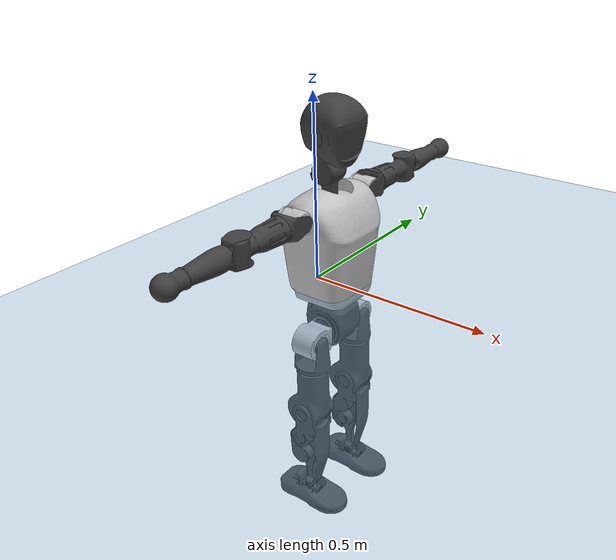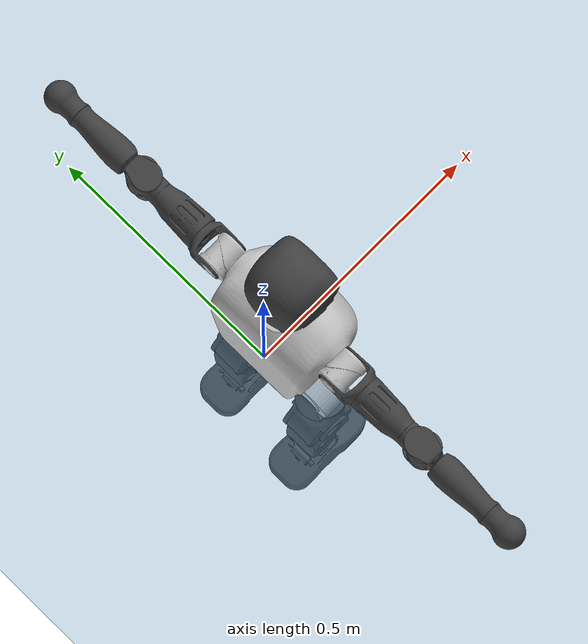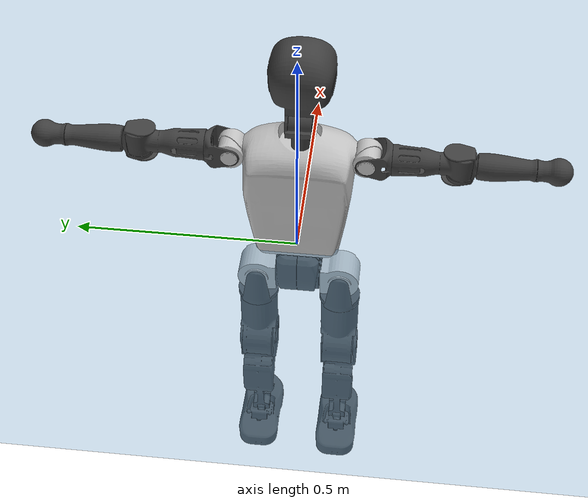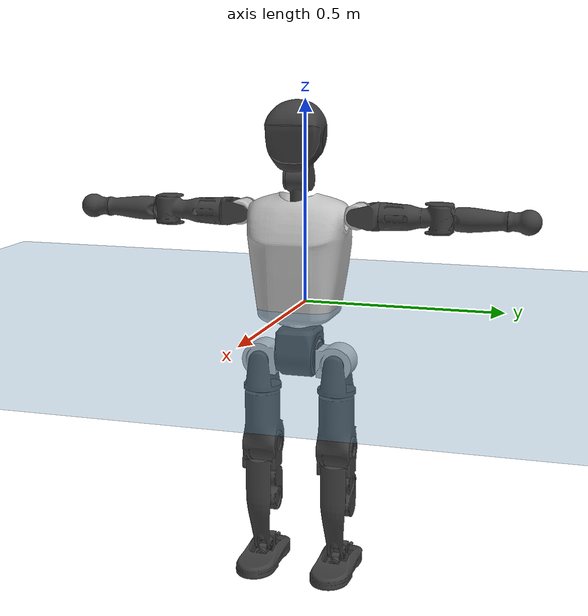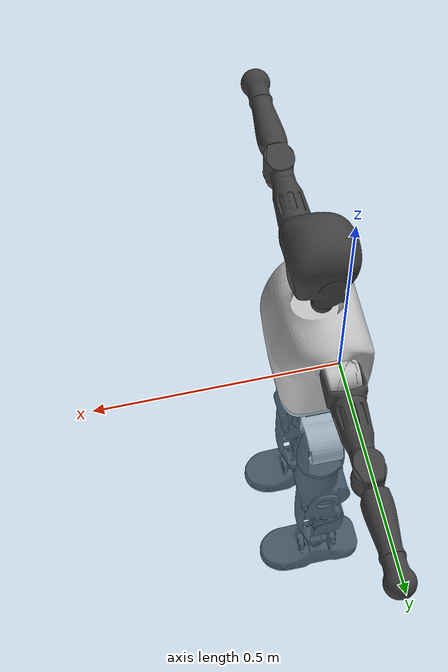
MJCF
<mujoco model="T1">
  <compiler angle="radian" assetdir="assets" balanceinertia="true" inertiafromgeom="false"/>

  <option timestep="0.005" density="1.2" viscosity="2e-05"/>

  <size nkey="1"/>

  <visual>
    <quality shadowsize="8192"/>
    <map shadowclip="0.5"/>
  </visual>

  <default>
    <default class="/">
      <joint armature="0.01" damping="0.01" frictionloss="0.1"/>
      <geom contype="0" conaffinity="0" group="1" solref="-1000 -80"/>
      <site size="0.01 0.005 0.005" group="5"/>
      <general forcelimited="true" biastype="affine" gainprm="25" biasprm="0 -25 -0.6"/>
      <default class="t1">
        <geom rgba="0.25 0.25 0.25 1"/>
        <default class="visual">
          <geom type="mesh" group="2"/>
        </default>
        <default class="collision">
          <geom group="3"/>
        </default>
        <default class="foot">
          <geom size="0.1115 0.05 0.015" type="box" condim="6" group="4" priority="1" solimp="0.015 1 0.015"/>
        </default>
        <default class="reward_collision_sphere">
          <geom group="5" rgba="1 0 0 1"/>
        </default>
      </default>
    </default>
  </default>

  <asset>
    <texture type="skybox" colorspace="auto" name="//unnamed_texture_0" builtin="gradient" rgb1="0.95 0.95 0.95" rgb2="0.95 0.95 0.95" width="100" height="600"/>
    <texture type="2d" colorspace="auto" name="texplane" builtin="checker" rgb1="0.345 0.575 0.748" rgb2="0.345 0.575 0.748" markrgb="1 1 1" width="512" height="512"/>
    <material name="MatPlane" class="/" texture="texplane" texuniform="true" texrepeat="2 2" specular="0.9"/>
    <mesh name="Trunk" class="/" file="Trunk.stl"/>
    <mesh name="H1" class="/" file="H1.stl"/>
    <mesh name="H2" class="/" file="H2.stl"/>
    <mesh name="AL1" class="/" file="AL1.stl"/>
    <mesh name="AL2" class="/" file="AL2.stl"/>
    <mesh name="AL3" class="/" file="AL3.stl"/>
    <mesh name="left_hand_link" class="/" file="left_hand_link.stl"/>
    <mesh name="AR1" class="/" file="AR1.stl"/>
    <mesh name="AR2" class="/" file="AR2.stl"/>
    <mesh name="AR3" class="/" file="AR3.stl"/>
    <mesh name="right_hand_link" class="/" file="right_hand_link.stl"/>
    <mesh name="Waist" class="/" file="Waist.stl"/>
    <mesh name="Hip_Pitch_Left" class="/" file="Hip_Pitch_Left.stl"/>
    <mesh name="Hip_Roll_Left" class="/" file="Hip_Roll_Left.stl"/>
    <mesh name="Hip_Yaw_Left" class="/" file="Hip_Yaw_Left.stl"/>
    <mesh name="Shank_Left" class="/" file="Shank_Left.stl"/>
    <mesh name="Ankle_Cross_Left" class="/" file="Ankle_Cross_Left.stl"/>
    <mesh name="left_foot_link" class="/" file="left_foot_link.stl"/>
    <mesh name="Hip_Pitch_Right" class="/" file="Hip_Pitch_Right.stl"/>
    <mesh name="Hip_Roll_Right" class="/" file="Hip_Roll_Right.stl"/>
    <mesh name="Hip_Yaw_Right" class="/" file="Hip_Yaw_Right.stl"/>
    <mesh name="Shank_Right" class="/" file="Shank_Right.stl"/>
    <mesh name="Ankle_Cross_Right" class="/" file="Ankle_Cross_Right.stl"/>
    <mesh name="right_foot_link" class="/" file="right_foot_link.stl"/>
  </asset>

  <worldbody>
    <geom name="floor" class="/" size="100 100 0.125" type="plane" group="0" material="MatPlane"/>
    <light name="toplight_shadow" class="/" pos="0 0 5" dir="0.0990148 0.0990148 -0.990148" type="directional" ambient="0.04 0.04 0.04" diffuse="0.55 0.55 0.55" specular="0.12 0.12 0.12"/>
    <light name="toplight_fill" class="/" pos="0 0 5" dir="0.0990148 0.0990148 -0.990148" type="directional" castshadow="false" ambient="0.04 0.04 0.04" diffuse="0.3 0.3 0.3" specular="0.08 0.08 0.08"/>
    <body name="trunk" childclass="t1" pos="0.000328889 5.28354e-05 0.000202899" quat="1 4.55865e-05 -0.00012688 -7.33095e-05">
      <inertial pos="0.0442597 -0.000458384 0.109365" quat="0.999966 -0.00311444 -0.00676592 -0.00341698" mass="9.3678" diaginertia="0.0321071 0.0507709 0.06731"/>
      <joint name="//unnamed_joint_0" type="free" armature="0" damping="0" frictionloss="0"/>
      <geom name="//unnamed_geom_1" class="visual" rgba="0.76 0.76 0.76 1" mesh="Trunk"/>
      <geom name="//unnamed_geom_2" class="collision" size="0.0690945 0.092126 0.138189" pos="0.0484916 0 0.124244" type="box"/>
      <geom name="//unnamed_geom_3" class="reward_collision_sphere" size="0.105945" pos="0.0484916 0 0.103537"/>
      <geom name="//unnamed_geom_4" class="reward_collision_sphere" size="0.0138189" pos="0.0484916 0.0782188 0"/>
      <geom name="//unnamed_geom_5" class="reward_collision_sphere" size="0.0138189" pos="0.0484916 -0.0782188 0"/>
      <geom name="//unnamed_geom_6" class="reward_collision_sphere" size="0.0138189" pos="0.0484916 0.0984637 0.186366"/>
      <geom name="//unnamed_geom_7" class="reward_collision_sphere" size="0.0138189" pos="0.0484916 -0.0984637 0.186366"/>
      <site name="imu" pos="-0.0104893 0.00431454 0.003921" size="0.0092126"/>
      <camera name="track" pos="0 -1.84044 0" quat="0.707107 0.707107 0 0" mode="trackcom"/>
      <camera name="ego_camera" pos="0.0985996 0 0.434853" quat="-0.5 -0.5 0.5 0.5"/>
      <body name="H1" pos="0.0475994 -0.00249081 0.248953" quat="1 0.000229665 0.000397789 0.000263055">
        <inertial pos="-0.00143068 -0.0012933 0.0601224" quat="0.757794 -0.00888206 0.00447619 0.652418" mass="0.35306" diaginertia="8.36903e-05 0.000143535 0.000179388"/>
        <joint name="AAHead_yaw" pos="0 0 0" axis="-0.00103124 0.0101207 0.999948" range="-1.57776 1.55146" armature="0.00993705" damping="0.00965154" frictionloss="0.0906182"/>
        <geom name="//unnamed_geom_8" class="visual" mesh="H1"/>
        <body name="H2" pos="-0.00118747 -6.2402e-05 0.0642415" quat="1 -0.000402048 0.000412897 8.43557e-05">
          <inertial pos="0.00609931 -0.00151022 0.102295" quat="0.988517 0.104738 -0.0766385 -0.0773966" mass="0.507227" diaginertia="0.0007187 0.0012805 0.00206286"/>
          <joint name="Head_pitch" pos="0 0 0" axis="-0.00045335 -1 -0.000582369" range="-1.23962 0.352088" armature="0.00939051" damping="0.00989441" frictionloss="0.0927337"/>
          <geom name="//unnamed_geom_9" class="visual" mesh="H2"/>
          <geom name="//unnamed_geom_10" class="collision" size="0.0737008" pos="0.00808194 0 0.11389"/>
          <geom name="//unnamed_geom_11" class="reward_collision_sphere" size="0.0829134" pos="0.0161639 0 0.103537"/>
        </body>
      </body>
      <body name="AL1" pos="0.0468032 0.100737 0.226743" quat="1 -4.0373e-05 0.000581928 2.13608e-05">
        <inertial pos="-0.00283012 0.0432829 -0.00112945" quat="0.503402 0.4944 -0.50288 0.499266" mass="0.409726" diaginertia="0.000469191 0.000847572 0.000347035"/>
        <joint name="Left_Shoulder_Pitch" pos="0 0 0" axis="-0.000168836 1 -0.000139393" stiffness="0.00569006" range="-3.32277 1.2255" armature="0.00934226" damping="0.00539135" frictionloss="0.0897227"/>
        <geom name="//unnamed_geom_12" class="visual" rgba="0.76 0.76 0.76 1" mesh="AL1"/>
        <body name="AL2" pos="-0.000214745 0.0458716 0.000316071" quat="1 0.000282775 0.000220437 -0.000310347">
          <inertial pos="0.00271306 0.0357417 -0.000717221" quat="0.487853 0.51178 -0.488083 0.511718" mass="0.12652" diaginertia="0.00014374 0.000240438 0.00021525"/>
          <joint name="Left_Shoulder_Roll" pos="0 0 0" axis="-0.999998 -0.00172964 -0.000215687" range="-1.56543 1.70575" armature="0.00919246" damping="0.0180259" frictionloss="0.0903687"/>
          <geom name="//unnamed_geom_13" class="visual" mesh="AL2"/>
          <body name="AL3" pos="0.00287381 0.0559521 0.00107575" quat="1 -0.000133728 -1.23458e-05 -1.82406e-05">
            <inertial pos="-0.000413214 0.0778132 0.000965097" quat="0.705071 0.709113 0.00541299 0.00187692" mass="0.789318" diaginertia="0.00446119 0.00835478 0.000729851"/>
            <joint name="Left_Elbow_Pitch" pos="0 0 0" axis="-0.00108584 -0.999999 -0.000181909" range="-2.28398 2.29656" armature="0.00849219" damping="0.00843791" frictionloss="0.0924869"/>
            <geom name="//unnamed_geom_14" class="visual" mesh="AL3"/>
            <geom name="//unnamed_geom_15" class="collision" size="0.0276378 0.0690945" pos="0 0.0460111 0" quat="0.707105 0.707108 0 0" type="cylinder"/>
            <geom name="//unnamed_geom_16" class="reward_collision_sphere" size="0.0331654"/>
            <body name="left_hand_link" pos="-0.000626692 0.135642 0.000326747" quat="1 -2.30712e-05 0.000521176 2.34002e-06">
              <inertial pos="0.0022572 0.0994756 0.000414315" quat="0.705945 0.708255 0.00120949 0.00385003" mass="0.25342" diaginertia="0.00278748 0.00533498 0.000248465"/>
              <joint name="Left_Elbow_Yaw" pos="0 0 0" axis="0.0017445 0.00127433 0.999998" range="-2.45385 0.00185736" armature="0.00968771" damping="0.0151277" frictionloss="0.097366"/>
              <geom name="//unnamed_geom_17" class="visual" mesh="left_hand_link"/>
              <geom name="//unnamed_geom_18" class="collision" size="0.0276378 0.0806103" pos="0 0.119629 0" quat="0.707105 0.707108 0 0" type="cylinder"/>
              <geom name="//unnamed_geom_19" class="reward_collision_sphere" size="0.046063"/>
              <geom name="//unnamed_geom_20" class="reward_collision_sphere" size="0.0322441" pos="0 0.101224 0"/>
              <geom name="//unnamed_geom_21" class="reward_collision_sphere" size="0.0322441" pos="0 0.197848 0"/>
            </body>
          </body>
        </body>
      </body>
      <body name="AR1" pos="0.0475251 -0.0986777 0.227098" quat="1 1.72692e-05 0.000422397 -2.60751e-05">
        <inertial pos="-0.00161958 -0.0424766 -0.000255982" quat="0.504069 0.495648 -0.504587 0.49562" mass="0.410698" diaginertia="0.000476276 0.000853148 0.000346169"/>
        <joint name="Right_Shoulder_Pitch" pos="0 0 0" axis="0.000175818 -1 0.0001734" stiffness="0.00716828" range="-1.2158 3.28903" armature="0.00940393" damping="0" frictionloss="0.0928223"/>
        <geom name="//unnamed_geom_22" class="visual" rgba="0.76 0.76 0.76 1" mesh="AR1"/>
        <body name="AR2" pos="0.000772298 -0.0433868 -0.0018302" quat="1 5.30378e-07 5.8929e-07 4.28961e-07">
          <inertial pos="0.00318201 -0.0338997 -0.00182532" quat="0.512549 0.489656 -0.510042 0.487224" mass="0.125294" diaginertia="0.000138878 0.000222716 0.000208832"/>
          <joint name="Right_Shoulder_Roll" pos="0 0 0" axis="-0.999959 -0.00899897 -0.000580776" range="-1.69397 1.56907" armature="0.00889706" damping="0.018934" frictionloss="0.0906059"/>
          <geom name="//unnamed_geom_23" class="visual" mesh="AR2"/>
          <body name="AR3" pos="0.000368571 -0.0557128 -0.000874859" quat="1 -0.000246717 -4.18411e-05 -2.80088e-05">
            <inertial pos="-0.00242816 -0.0795538 5.84888e-05" quat="0.708695 0.705513 0.000484404 0.00134" mass="0.797216" diaginertia="0.00445683 0.00842778 0.00075905"/>
            <joint name="Right_Elbow_Pitch" pos="0 0 0" axis="0.00258532 0.999996 -0.00113742" range="-2.27422 2.26255" armature="0.00924329" damping="0.0137682" frictionloss="0.0826822"/>
            <geom name="//unnamed_geom_24" class="visual" mesh="AR3"/>
            <geom name="//unnamed_geom_25" class="collision" size="0.0276378 0.0690945" pos="0 -0.0460111 0" quat="0.707105 0.707108 0 0" type="cylinder"/>
            <geom name="//unnamed_geom_26" class="reward_collision_sphere" size="0.0331654"/>
            <body name="right_hand_link" pos="-0.00069946 -0.135308 -0.000357137" quat="1 0.000199745 9.51606e-05 0.000141295">
              <inertial pos="0.000358485 -0.100461 0.00256179" quat="0.706119 0.708093 0.000204476 7.94186e-05" mass="0.256293" diaginertia="0.00278668 0.00523669 0.000257753"/>
              <joint name="Right_Elbow_Yaw" pos="0 0 0" axis="-0.000880013 0.00219301 0.999997" range="-0.00373489 2.45929" armature="0.00926642" damping="0.0105436" frictionloss="0.0835243"/>
              <geom name="//unnamed_geom_27" class="visual" mesh="right_hand_link"/>
              <geom name="//unnamed_geom_28" class="collision" size="0.0276378 0.0806103" pos="0 -0.119629 0" quat="0.707105 0.707108 0 0" type="cylinder"/>
              <geom name="//unnamed_geom_29" class="reward_collision_sphere" size="0.046063"/>
              <geom name="//unnamed_geom_30" class="reward_collision_sphere" size="0.0322441" pos="0 -0.101224 0"/>
              <geom name="//unnamed_geom_31" class="reward_collision_sphere" size="0.0322441" pos="0 -0.197848 0"/>
            </body>
          </body>
        </body>
      </body>
      <body name="Waist" pos="0.0513272 9.91256e-05 -0.120404" quat="1 0.000173892 0.000201038 0.000236297">
        <inertial pos="0.00105136 -0.000521557 0.0073681" quat="0.983522 0.000975867 -0.180755 0.00330009" mass="1.99572" diaginertia="0.00189974 0.00345933 0.00579325"/>
        <joint name="Waist" pos="0 0 0" axis="0.00241418 0.00540907 0.999982" range="-1.57094 1.5729" armature="0.0090909" damping="0.00940874" frictionloss="0.0836701"/>
        <geom name="//unnamed_geom_32" class="visual" mesh="Waist"/>
        <body name="Hip_Pitch_Left" pos="0.00119412 0.0968347 0.000851592" quat="1 -0.000735052 0.000220935 -0.000267697">
          <inertial pos="0.000269389 -0.00828991 -0.0198022" quat="0.974621 0.22337 0.0144687 0.00328896" mass="0.794859" diaginertia="0.00061878 0.00097054 0.00151788"/>
          <joint name="Left_Hip_Pitch" pos="0 0 0" axis="0.00241663 0.999997 2.19315e-05" range="-1.78065 1.56884" armature="0.00942543" damping="0.0174663" frictionloss="0.0921561"/>
          <geom name="//unnamed_geom_33" class="visual" rgba="0.76 0.76 0.76 1" mesh="Hip_Pitch_Left"/>
          <body name="Hip_Roll_Left" pos="0.00218713 0.000616099 -0.0207709" quat="0.999999 -0.00112402 0.000341054 0.000110108">
            <inertial pos="0.00146067 0.000742553 -0.0558338" quat="0.707022 -0.00710336 -0.00642197 0.707126" mass="0.28816" diaginertia="0.000567089 0.00097558 0.000594251"/>
            <joint name="Left_Hip_Roll" pos="0 0 0" axis="-0.99995 -0.00168534 -0.00990042" range="-1.52566 0.193906" armature="0.00928303" damping="0.00668431" frictionloss="0.0963726"/>
            <geom name="//unnamed_geom_34" class="visual" mesh="Hip_Roll_Left"/>
            <geom name="//unnamed_geom_35" class="reward_collision_sphere" size="0.0506693"/>
            <body name="Hip_Yaw_Left" pos="0.000729094 0.000170134 -0.0858161" quat="1 -0.00075994 -0.000582967 7.66213e-05">
              <inertial pos="-0.00750418 0.000873539 -0.0915112" quat="0.694645 -0.0347493 -0.0289352 0.71793" mass="1.69303" diaginertia="0.00912333 0.0167587 0.00311157"/>
              <joint name="Left_Hip_Yaw" pos="0 0 0" axis="0.00128234 -0.00133538 -0.999998" range="-0.960376 1.0409" armature="0.00911162" damping="0.00870051" frictionloss="0.0982099"/>
              <geom name="//unnamed_geom_36" class="visual" mesh="Hip_Yaw_Left"/>
              <geom name="//unnamed_geom_37" class="collision" size="0.046063 0.0737008" type="cylinder"/>
              <body name="Shank_Left" pos="-0.0109907 0.00136945 -0.138293" quat="1 -1.2503e-05 -3.73811e-06 -1.37963e-06">
                <inertial pos="-0.00706495 -0.000213767 -0.129799" quat="0.997465 0.00898582 -0.0321262 0.0628518" mass="1.35392" diaginertia="0.011981 0.0234953 0.0022252"/>
                <joint name="Left_Knee_Pitch" pos="0 0 0" axis="-0.000885404 0.999992 -0.00399768" stiffness="4.37038e-05" range="-0.00763703 2.35863" armature="0.00891791" damping="0.00833447" frictionloss="0.102"/>
                <geom name="//unnamed_geom_38" class="visual" mesh="Shank_Left"/>
                <geom name="//unnamed_geom_39" class="collision" size="0.046063 0.0690945" pos="0 0 -0.124244" type="cylinder"/>
                <geom name="//unnamed_geom_40" class="reward_collision_sphere" size="0.0598819"/>
                <body name="Ankle_Cross_Left" pos="0.00231627 0.000567924 -0.291124" quat="1 1.59924e-05 -6.37755e-06 0.00010719">
                  <inertial pos="-0.00299562 -0.000360046 -0.00871942" quat="0.443381 0.549326 0.552032 0.443751" mass="0.0568286" diaginertia="9.87238e-06 1.69089e-05 1.33555e-05"/>
                  <joint name="Left_Ankle_Pitch" pos="0 0 0" axis="0.001819 0.999995 0.00250739" range="-0.872309 0.339707" armature="0.0102356" damping="0.0151765" frictionloss="0.0955664"/>
                  <geom name="//unnamed_geom_41" class="visual" mesh="Ankle_Cross_Left"/>
                  <body name="left_foot_link" pos="0.00161264 0.000809599 -0.0119109" quat="1 4.54048e-05 3.82807e-05 -4.23223e-05">
                    <inertial pos="-0.0021997 0.000621129 -0.00932628" quat="0.000250201 0.62099 -0.000300236 0.783819" mass="0.541049" diaginertia="0.00093286 0.00156654 0.00256658"/>
                    <joint name="Left_Ankle_Roll" pos="0 0 0" axis="-0.999998 -0.0020161 -0.000140706" range="-0.446603 0.452285" armature="0.0091331" damping="0.000123207" frictionloss="0.0919711"/>
                    <geom name="//unnamed_geom_42" class="visual" mesh="left_foot_link"/>
                    <geom name="left_foot" class="foot" size="0.101219 0.0445148 0.0144469" pos="0.00808194 0 -0.0155305"/>
                    <geom name="//unnamed_geom_44" class="reward_collision_sphere" size="0.0479055" pos="0.00808194 0 -0.0155305"/>
                    <geom name="//unnamed_geom_45" class="reward_collision_sphere" size="0.0276378" pos="0.0767784 -0.0211651 -0.0155305"/>
                    <geom name="//unnamed_geom_46" class="reward_collision_sphere" size="0.0276378" pos="-0.0565736 -0.0211651 -0.0155305"/>
                    <site name="left_foot" class="foot" pos="0.00808194 0 -0.0155305" size="0.0092126"/>
                  </body>
                </body>
              </body>
            </body>
          </body>
        </body>
        <body name="Hip_Pitch_Right" pos="3.30215e-05 -0.0972604 3.66751e-05" quat="1 -7.11997e-05 0.000153734 0.000100953">
          <inertial pos="0.000301931 0.00699855 -0.0200574" quat="0.974291 -0.224796 0.0131854 -0.00704031" mass="0.801996" diaginertia="0.000605961 0.000989803 0.0014747"/>
          <joint name="Right_Hip_Pitch" pos="0 0 0" axis="0.00456438 -0.999986 0.00283988" range="-1.61981 1.84371" armature="0.00936796" damping="0.0150691" frictionloss="0.0827868"/>
          <geom name="//unnamed_geom_47" class="visual" rgba="0.76 0.76 0.76 1" mesh="Hip_Pitch_Right"/>
          <body name="Hip_Roll_Right" pos="0.00232107 0.000334667 -0.0214836" quat="1 -0.000342786 0.000153895 -4.56273e-05">
            <inertial pos="0.00198774 -0.00135297 -0.0543893" quat="0.703696 -0.00535063 -0.00486125 0.710465" mass="0.29678" diaginertia="0.000590757 0.000997533 0.000617519"/>
            <joint name="Right_Hip_Roll" pos="0 0 0" axis="-0.999908 0.0128706 -0.00424553" stiffness="0.00351824" range="-0.202006 1.58812" armature="0.00912116" damping="0.00875906" frictionloss="0.090002"/>
            <geom name="//unnamed_geom_48" class="visual" mesh="Hip_Roll_Right"/>
            <geom name="//unnamed_geom_49" class="reward_collision_sphere" size="0.0506693"/>
            <body name="Hip_Yaw_Right" pos="-0.000972814 -0.000958038 -0.0865144" quat="1 7.66787e-05 -0.000126106 -0.000142681">
              <inertial pos="-0.00574339 0.00144872 -0.0925465" quat="0.707127 -0.0371097 -0.0364359 0.705172" mass="1.69887" diaginertia="0.00894931 0.0168706 0.00311404"/>
              <joint name="Right_Hip_Yaw" pos="0 0 0" axis="0.00155743 -0.000838342 -0.999998" stiffness="0.000396003" range="-0.984004 0.987153" armature="0.00940863" damping="0.0147581" frictionloss="0.0924805"/>
              <geom name="//unnamed_geom_50" class="visual" mesh="Hip_Yaw_Right"/>
              <geom name="//unnamed_geom_51" class="collision" size="0.046063 0.0737008" type="cylinder"/>
              <body name="Shank_Right" pos="-0.0114359 -0.00253603 -0.138142" quat="1 -9.14396e-06 -1.03615e-05 -0.000172489">
                <inertial pos="-0.00711597 0.00213736 -0.126444" quat="0.999309 -0.00224365 -0.0268136 -0.0256296" mass="1.42053" diaginertia="0.0118928 0.0228134 0.00235361"/>
                <joint name="Right_Knee_Pitch" pos="0 0 0" axis="-0.000241663 -0.999997 0.00248752" range="-2.33491 0.000779059" armature="0.00921456" damping="0.00155679" frictionloss="0.095544"/>
                <geom name="//unnamed_geom_52" class="visual" mesh="Shank_Right"/>
                <geom name="//unnamed_geom_53" class="collision" size="0.046063 0.0690945" pos="0 0 -0.124244" type="cylinder"/>
                <geom name="//unnamed_geom_54" class="reward_collision_sphere" size="0.0598819"/>
                <body name="Ankle_Cross_Right" pos="-0.000937173 -0.000704848 -0.290679" quat="1 -8.6309e-05 5.15278e-05 -0.000248375">
                  <inertial pos="-0.00208717 -0.00109936 -0.00918512" quat="0.443415 0.544867 0.549919 0.451766" mass="0.0573612" diaginertia="1.00311e-05 1.60861e-05 1.31619e-05"/>
                  <joint name="Right_Ankle_Pitch" pos="0 0 0" axis="0.00153467 -0.999995 -0.0026246" range="-0.362446 0.86859" armature="0.00941926" damping="0" frictionloss="0.0916079"/>
                  <geom name="//unnamed_geom_55" class="visual" mesh="Ankle_Cross_Right"/>
                  <body name="right_foot_link" pos="-0.00145014 -0.00111912 -0.0104418" quat="1 5.14532e-06 1.17908e-05 -7.54097e-06">
                    <inertial pos="0.000658325 -0.000820516 -0.00768928" quat="-7.8682e-06 0.620761 -1.06491e-05 0.784" mass="0.540306" diaginertia="0.000950101 0.00155603 0.00259419"/>
                    <joint name="Right_Ankle_Roll" pos="0 0 0" axis="-0.999999 0.00125987 -9.26783e-05" range="-0.442903 0.43508" armature="0.00918475" damping="0.00860193" frictionloss="0.0903909"/>
                    <geom name="//unnamed_geom_56" class="visual" mesh="right_foot_link"/>
                    <geom name="right_foot" class="foot" size="0.0991868 0.0431073 0.0135434" pos="0.00808194 0 -0.0155305"/>
                    <geom name="//unnamed_geom_58" class="reward_collision_sphere" size="0.0368504"/>
                    <geom name="//unnamed_geom_59" class="reward_collision_sphere" size="0.0276378" pos="0.00808194 0 -0.0155305"/>
                    <geom name="//unnamed_geom_60" class="reward_collision_sphere" size="0.0276378" pos="0.0767784 0.0211651 -0.0155305"/>
                    <geom name="//unnamed_geom_61" class="reward_collision_sphere" size="0.0276378" pos="-0.0565736 0.0211651 -0.0155305"/>
                    <site name="right_foot" class="foot" pos="0.00808194 0 -0.0155305" size="0.0092126"/>
                  </body>
                </body>
              </body>
            </body>
          </body>
        </body>
      </body>
    </body>
  </worldbody>

  <contact>
    <pair class="/" geom1="floor" geom2="left_foot" name="//unnamed_contact_0"/>
    <pair class="/" geom1="floor" geom2="right_foot" name="//unnamed_contact_1"/>
  </contact>

  <actuator>
    <general name="AAHead_yaw" class="/" joint="AAHead_yaw" forcerange="-6.59067 6.59067" gainprm="22.0625" biasprm="0 -22.0625 -0.524614"/>
    <general name="Head_pitch" class="/" joint="Head_pitch" forcerange="-6.33911 6.33911" gainprm="22.0625" biasprm="0 -22.0625 -0.524614"/>
    <general name="Left_Shoulder_Pitch" class="/" joint="Left_Shoulder_Pitch" forcerange="-16.8196 16.8196" gainprm="22.0625" biasprm="0 -22.0625 -0.524614"/>
    <general name="Left_Shoulder_Roll" class="/" joint="Left_Shoulder_Roll" forcerange="-16.2769 16.2769" gainprm="22.0625" biasprm="0 -22.0625 -0.524614"/>
    <general name="Left_Elbow_Pitch" class="/" joint="Left_Elbow_Pitch" forcerange="-17.1663 17.1663" gainprm="22.0625" biasprm="0 -22.0625 -0.524614"/>
    <general name="Left_Elbow_Yaw" class="/" joint="Left_Elbow_Yaw" forcerange="-16.5928 16.5928" gainprm="22.0625" biasprm="0 -22.0625 -0.524614"/>
    <general name="Right_Shoulder_Pitch" class="/" joint="Right_Shoulder_Pitch" forcerange="-17.219 17.219" gainprm="22.0625" biasprm="0 -22.0625 -0.524614"/>
    <general name="Right_Shoulder_Roll" class="/" joint="Right_Shoulder_Roll" forcerange="-17.0532 17.0532" gainprm="22.0625" biasprm="0 -22.0625 -0.524614"/>
    <general name="Right_Elbow_Pitch" class="/" joint="Right_Elbow_Pitch" forcerange="-16.7592 16.7592" gainprm="22.0625" biasprm="0 -22.0625 -0.524614"/>
    <general name="Right_Elbow_Yaw" class="/" joint="Right_Elbow_Yaw" forcerange="-16.0415 16.0415" gainprm="22.0625" biasprm="0 -22.0625 -0.524614"/>
    <general name="Waist" class="/" joint="Waist" forcerange="-27.8505 27.8505" gainprm="22.0625" biasprm="0 -22.0625 -0.524614"/>
    <general name="Left_Hip_Pitch" class="/" joint="Left_Hip_Pitch" forcerange="-41.6079 41.6079" gainprm="22.0625" biasprm="0 -22.0625 -0.524614"/>
    <general name="Left_Hip_Roll" class="/" joint="Left_Hip_Roll" forcerange="-27.3402 27.3402" gainprm="22.0625" biasprm="0 -22.0625 -0.524614"/>
    <general name="Left_Hip_Yaw" class="/" joint="Left_Hip_Yaw" forcerange="-26.7786 26.7786" gainprm="22.0625" biasprm="0 -22.0625 -0.524614"/>
    <general name="Left_Knee_Pitch" class="/" joint="Left_Knee_Pitch" forcerange="-53.3782 53.3782" gainprm="22.0625" biasprm="0 -22.0625 -0.524614"/>
    <general name="Left_Ankle_Pitch" class="/" joint="Left_Ankle_Pitch" forcerange="-18.7368 18.7368" gainprm="22.0625" biasprm="0 -22.0625 -0.524614"/>
    <general name="Left_Ankle_Roll" class="/" joint="Left_Ankle_Roll" forcerange="-13.6452 13.6452" gainprm="22.0625" biasprm="0 -22.0625 -0.524614"/>
    <general name="Right_Hip_Pitch" class="/" joint="Right_Hip_Pitch" forcerange="-40.553 40.553" gainprm="22.0625" biasprm="0 -22.0625 -0.524614"/>
    <general name="Right_Hip_Roll" class="/" joint="Right_Hip_Roll" forcerange="-27.6927 27.6927" gainprm="22.0625" biasprm="0 -22.0625 -0.524614"/>
    <general name="Right_Hip_Yaw" class="/" joint="Right_Hip_Yaw" forcerange="-28.7262 28.7262" gainprm="22.0625" biasprm="0 -22.0625 -0.524614"/>
    <general name="Right_Knee_Pitch" class="/" joint="Right_Knee_Pitch" forcerange="-53.0191 53.0191" gainprm="22.0625" biasprm="0 -22.0625 -0.524614"/>
    <general name="Right_Ankle_Pitch" class="/" joint="Right_Ankle_Pitch" forcerange="-17.2873 17.2873" gainprm="22.0625" biasprm="0 -22.0625 -0.524614"/>
    <general name="Right_Ankle_Roll" class="/" joint="Right_Ankle_Roll" forcerange="-13.2868 13.2868" gainprm="22.0625" biasprm="0 -22.0625 -0.524614"/>
  </actuator>

  <sensor>
    <gyro site="imu" name="imu_angular_velocity"/>
    <velocimeter site="imu" name="imu_linear_velocity"/>
    <framelinvel objtype="site" objname="left_foot" name="left_foot_global_linear_velocity"/>
    <framelinvel objtype="site" objname="right_foot" name="right_foot_global_linear_velocity"/>
  </sensor>

  <keyframe>
    <key name="home" qpos="0 0 0.6385 1 0 0 0 0 0 0 1.4 0 -0.4 0 -1.4 0 0.4 0 -0.4 0 0 0.8 -0.4 0 0.4 0 0 -0.8 0.4 0"/>
  </keyframe>
</mujoco>
